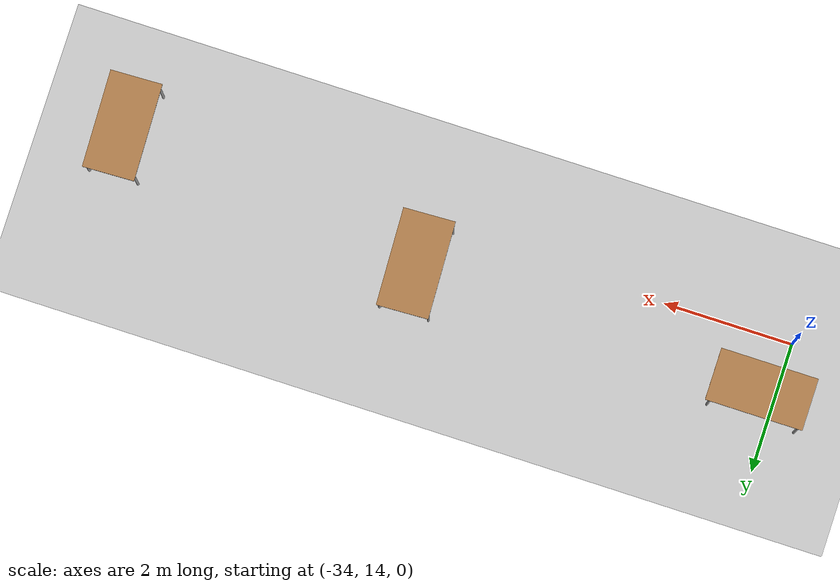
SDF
<sdf version="1.6">
 <world name="default">
  <model name="ground_plane">
   <static>1</static>
   <link name="link">
    <collision name="collision">
     <geometry><plane><normal>0 0 1</normal><size>100 100</size></plane></geometry>
     <surface><friction><ode><mu>100</mu><mu2>50</mu2></ode></friction></surface>
    </collision>
    <visual name="visual">
     <cast_shadows>0</cast_shadows>
     <geometry><plane><normal>0 0 1</normal><size>100 100</size></plane></geometry>
     <material>
      <script><uri>file://media/materials/scripts/gazebo.material</uri><name>Gazebo/Grey</name></script>
     </material>
    </visual>
   </link>
  </model>
  <model name="table_clone_6">
   <static>1</static>
   <link name="link">
    <collision name="surface">
     <pose>0 0 1 0 -0 0</pose>
     <geometry><box><size>1.5 0.8 0.03</size></box></geometry>
     <surface><friction><ode><mu>0.6</mu><mu2>0.6</mu2></ode></friction></surface>
    </collision>
    <visual name="visual1">
     <pose>0 0 1 0 -0 0</pose>
     <geometry><box><size>1.5 0.8 0.03</size></box></geometry>
     <material>
      <script><uri>file://media/materials/scripts/gazebo.material</uri><name>Gazebo/Wood</name></script>
     </material>
    </visual>
    <collision name="front_left_leg">
     <pose>0.68 0.38 0.5 0 -0 0</pose>
     <geometry><cylinder><radius>0.02</radius><length>1</length></cylinder></geometry>
    </collision>
    <visual name="front_left_leg">
     <pose>0.68 0.38 0.5 0 -0 0</pose>
     <geometry><cylinder><radius>0.02</radius><length>1</length></cylinder></geometry>
     <material>
      <script><uri>file://media/materials/scripts/gazebo.material</uri><name>Gazebo/Grey</name></script>
     </material>
    </visual>
    <collision name="front_right_leg">
     <pose>0.68 -0.38 0.5 0 -0 0</pose>
     <geometry><cylinder><radius>0.02</radius><length>1</length></cylinder></geometry>
    </collision>
    <visual name="front_right_leg">
     <pose>0.68 -0.38 0.5 0 -0 0</pose>
     <geometry><cylinder><radius>0.02</radius><length>1</length></cylinder></geometry>
     <material>
      <script><uri>file://media/materials/scripts/gazebo.material</uri><name>Gazebo/Grey</name></script>
     </material>
    </visual>
    <collision name="back_right_leg">
     <pose>-0.68 -0.38 0.5 0 -0 0</pose>
     <geometry><cylinder><radius>0.02</radius><length>1</length></cylinder></geometry>
    </collision>
    <visual name="back_right_leg">
     <pose>-0.68 -0.38 0.5 0 -0 0</pose>
     <geometry><cylinder><radius>0.02</radius><length>1</length></cylinder></geometry>
     <material>
      <script><uri>file://media/materials/scripts/gazebo.material</uri><name>Gazebo/Grey</name></script>
     </material>
    </visual>
    <collision name="back_left_leg">
     <pose>-0.68 0.38 0.5 0 -0 0</pose>
     <geometry><cylinder><radius>0.02</radius><length>1</length></cylinder></geometry>
    </collision>
    <visual name="back_left_leg">
     <pose>-0.68 0.38 0.5 0 -0 0</pose>
     <geometry><cylinder><radius>0.02</radius><length>1</length></cylinder></geometry>
     <material>
      <script><uri>file://media/materials/scripts/gazebo.material</uri><name>Gazebo/Grey</name></script>
     </material>
    </visual>
   </link>
   <pose>-33.741 14.8653 -0.032493 0 -0 0</pose>
  </model>
  <model name="table_clone_7">
   <static>1</static>
   <link name="link">
    <collision name="surface">
     <pose>0 0 1 0 -0 0</pose>
     <geometry><box><size>1.5 0.8 0.03</size></box></geometry>
     <surface><friction><ode><mu>0.6</mu><mu2>0.6</mu2></ode></friction></surface>
    </collision>
    <visual name="visual1">
     <pose>0 0 1 0 -0 0</pose>
     <geometry><box><size>1.5 0.8 0.03</size></box></geometry>
     <material>
      <script><uri>file://media/materials/scripts/gazebo.material</uri><name>Gazebo/Wood</name></script>
     </material>
    </visual>
    <collision name="front_left_leg">
     <pose>0.68 0.38 0.5 0 -0 0</pose>
     <geometry><cylinder><radius>0.02</radius><length>1</length></cylinder></geometry>
    </collision>
    <visual name="front_left_leg">
     <pose>0.68 0.38 0.5 0 -0 0</pose>
     <geometry><cylinder><radius>0.02</radius><length>1</length></cylinder></geometry>
     <material>
      <script><uri>file://media/materials/scripts/gazebo.material</uri><name>Gazebo/Grey</name></script>
     </material>
    </visual>
    <collision name="front_right_leg">
     <pose>0.68 -0.38 0.5 0 -0 0</pose>
     <geometry><cylinder><radius>0.02</radius><length>1</length></cylinder></geometry>
    </collision>
    <visual name="front_right_leg">
     <pose>0.68 -0.38 0.5 0 -0 0</pose>
     <geometry><cylinder><radius>0.02</radius><length>1</length></cylinder></geometry>
     <material>
      <script><uri>file://media/materials/scripts/gazebo.material</uri><name>Gazebo/Grey</name></script>
     </material>
    </visual>
    <collision name="back_right_leg">
     <pose>-0.68 -0.38 0.5 0 -0 0</pose>
     <geometry><cylinder><radius>0.02</radius><length>1</length></cylinder></geometry>
    </collision>
    <visual name="back_right_leg">
     <pose>-0.68 -0.38 0.5 0 -0 0</pose>
     <geometry><cylinder><radius>0.02</radius><length>1</length></cylinder></geometry>
     <material>
      <script><uri>file://media/materials/scripts/gazebo.material</uri><name>Gazebo/Grey</name></script>
     </material>
    </visual>
    <collision name="back_left_leg">
     <pose>-0.68 0.38 0.5 0 -0 0</pose>
     <geometry><cylinder><radius>0.02</radius><length>1</length></cylinder></geometry>
    </collision>
    <visual name="back_left_leg">
     <pose>-0.68 0.38 0.5 0 -0 0</pose>
     <geometry><cylinder><radius>0.02</radius><length>1</length></cylinder></geometry>
     <material>
      <script><uri>file://media/materials/scripts/gazebo.material</uri><name>Gazebo/Grey</name></script>
     </material>
    </visual>
   </link>
   <pose>-28.3219 14.6638 0 0 -0 1.61052</pose>
  </model>
  <model name="table_clone_8">
   <static>1</static>
   <link name="link">
    <collision name="surface">
     <pose>0 0 1 0 -0 0</pose>
     <geometry><box><size>1.5 0.8 0.03</size></box></geometry>
     <surface><friction><ode><mu>0.6</mu><mu2>0.6</mu2></ode></friction></surface>
    </collision>
    <visual name="visual1">
     <pose>0 0 1 0 -0 0</pose>
     <geometry><box><size>1.5 0.8 0.03</size></box></geometry>
     <material>
      <script><uri>file://media/materials/scripts/gazebo.material</uri><name>Gazebo/Wood</name></script>
     </material>
    </visual>
    <collision name="front_left_leg">
     <pose>0.68 0.38 0.5 0 -0 0</pose>
     <geometry><cylinder><radius>0.02</radius><length>1</length></cylinder></geometry>
    </collision>
    <visual name="front_left_leg">
     <pose>0.68 0.38 0.5 0 -0 0</pose>
     <geometry><cylinder><radius>0.02</radius><length>1</length></cylinder></geometry>
     <material>
      <script><uri>file://media/materials/scripts/gazebo.material</uri><name>Gazebo/Grey</name></script>
     </material>
    </visual>
    <collision name="front_right_leg">
     <pose>0.68 -0.38 0.5 0 -0 0</pose>
     <geometry><cylinder><radius>0.02</radius><length>1</length></cylinder></geometry>
    </collision>
    <visual name="front_right_leg">
     <pose>0.68 -0.38 0.5 0 -0 0</pose>
     <geometry><cylinder><radius>0.02</radius><length>1</length></cylinder></geometry>
     <material>
      <script><uri>file://media/materials/scripts/gazebo.material</uri><name>Gazebo/Grey</name></script>
     </material>
    </visual>
    <collision name="back_right_leg">
     <pose>-0.68 -0.38 0.5 0 -0 0</pose>
     <geometry><cylinder><radius>0.02</radius><length>1</length></cylinder></geometry>
    </collision>
    <visual name="back_right_leg">
     <pose>-0.68 -0.38 0.5 0 -0 0</pose>
     <geometry><cylinder><radius>0.02</radius><length>1</length></cylinder></geometry>
     <material>
      <script><uri>file://media/materials/scripts/gazebo.material</uri><name>Gazebo/Grey</name></script>
     </material>
    </visual>
    <collision name="back_left_leg">
     <pose>-0.68 0.38 0.5 0 -0 0</pose>
     <geometry><cylinder><radius>0.02</radius><length>1</length></cylinder></geometry>
    </collision>
    <visual name="back_left_leg">
     <pose>-0.68 0.38 0.5 0 -0 0</pose>
     <geometry><cylinder><radius>0.02</radius><length>1</length></cylinder></geometry>
     <material>
      <script><uri>file://media/materials/scripts/gazebo.material</uri><name>Gazebo/Grey</name></script>
     </material>
    </visual>
   </link>
   <pose>-23.5593 14.05 0 0 0 -1.53706</pose>
  </model>
 </world>
</sdf>
